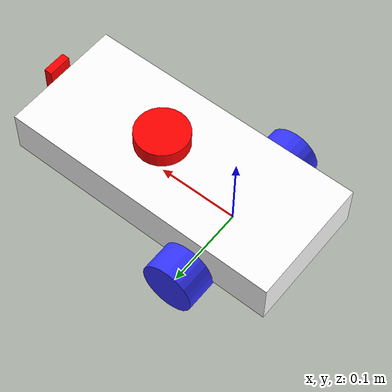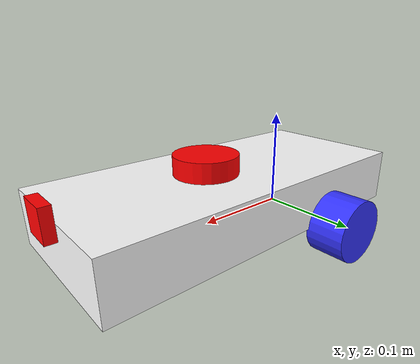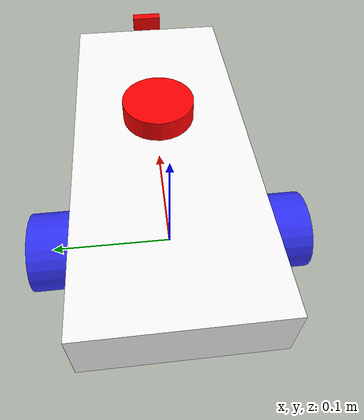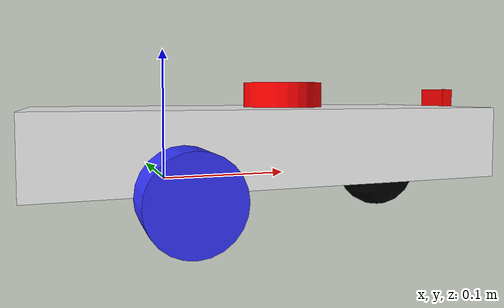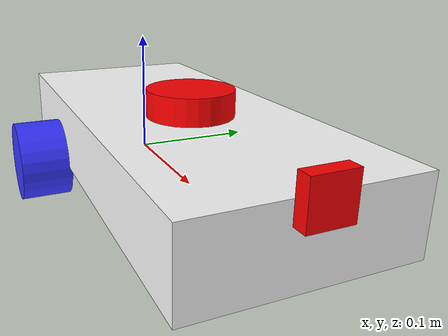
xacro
<?xml version="1.0"?>
<robot xmlns:xacro="http://www.ros.org/wiki/xacro"  name="robot">

    <xacro:arg name="use_ros2_control" default="true"/>

    <xacro:if value="$(arg use_ros2_control)">
    <xacro:include filename="ros2_control.xacro"/>
    </xacro:if>

    <xacro:unless value="$(arg use_ros2_control)">
    <xacro:include filename="gazebo_control.xacro"/>
   </xacro:unless>

    <xacro:include filename="robot_core.xacro"/>
    <xacro:include filename="lidar.xacro"/>
    <xacro:include filename="camera.xacro"/>

</robot>

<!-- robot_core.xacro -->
<robot xmlns:xacro="http://www.ros.org/wiki/xacro">
    <xacro:include filename="inertial_macros.xacro"/>
    <material name="white">
        <color rgba="1 1 1 1" />
    </material>

    <material name="orange">
        <color rgba="1 0.3 0.1 1" />
    </material>

    <material name="blue">
        <color rgba="0.2 0.2 1 1" />
    </material>

    <material name="black">
        <color rgba="0 0 0 1" />
    </material>

    <material name="red">
        <color rgba="1 0 0 1" />
    </material>

    <!-- BASE LINK -->
    <link name="base_link">

    </link>

    <!-- CHASSIS LINK  -->
    <joint name="chassis_joint" type="fixed">
        <parent link="base_link"/>
        <child link="chassis"/>
        <origin xyz="-0.1 0 0"/>
    </joint>

    <link name="chassis">
        <visual>
            <origin xyz="0.175 0 0.0275"/>
            <geometry>
                <box size ="0.35 0.155 0.055"/>
            </geometry>
            <material name="white"/>
        </visual>
        <collision>
            <origin xyz="0.175 0 0.0275"/>
            <geometry>
                <box size ="0.35 0.155 0.055"/>
            </geometry>
        </collision>
        <xacro:inertial_box mass="0.5" x="0.35" y="0.155" z="0.055">
            <origin xyz="0.175 0 0.0275" rpy="0 0 0"/>
        </xacro:inertial_box>
    </link>

    <gazebo reference="chassis">
        <material>Gazebo/White</material>
    </gazebo>

    <!-- LEFT WHEEL LINK -->
    <joint name="left_wheel_joint" type = "continuous">
        <parent link="base_link"/>
        <child link ="left_wheel"/>
        <origin xyz = "0 0.09525 0" rpy="-${pi/2} 0 0"/>
        <axis xyz ="0 0 1"/>
    </joint>

    <link name="left_wheel">
        <visual>
            <geometry>
                <cylinder radius="0.0325" length="0.04"/>
            </geometry>
            <material name="blue"/>
        </visual>
        <collision>
            <geometry>
                <sphere radius="0.0325"/>
            </geometry>
            <material name="blue"/>
        </collision>
        <xacro:inertial_cylinder mass ="0.1" length="0.04" radius="0.0325">
            <origin xyz ="0 0 0" rpy="0 0 0"/>
        </xacro:inertial_cylinder>
    </link>

    <gazebo reference="left_wheel">
        <material>Gazebo/Blue</material>
    </gazebo>

    <!-- RIGHT WHEEL LINK -->
    <joint name="right_wheel_joint" type = "continuous">
        <parent link="base_link"/>
        <child link ="right_wheel"/>
        <origin xyz = "0 -0.09525 0" rpy="${pi/2} 0 0"/>
        <axis xyz ="0 0 -1"/>
    </joint>

    <link name="right_wheel">
        <visual>
            <geometry>
                <cylinder radius="0.0325" length="0.04"/>
            </geometry>
            <material name="blue"/>
        </visual>
        <collision>
            <geometry>
                <sphere radius="0.0325"/>
            </geometry>
            <material name="blue"/>
        </collision>
        <xacro:inertial_cylinder mass ="0.1" length="0.04" radius="0.0325">
            <origin xyz ="0 0 0" rpy="0 0 0"/>
        </xacro:inertial_cylinder>
    </link>

    <gazebo reference="right_wheel">
        <material>Gazebo/Blue</material>
    </gazebo>

    <!-- CASTER WHEEL LINK -->
    <joint name="caster_wheel_joint" type="fixed">
        <parent link="chassis"/>
        <child link="caster_wheel"/>
        <origin xyz="0.29 0 0"/>
    </joint>

    <link name="caster_wheel">
        <visual>
            <geometry>
                <sphere radius="0.0325"/>
            </geometry>
            <material name="black"/>
        </visual>
        <collision>
            <geometry>
                <sphere radius="0.0325"/>
            </geometry>
            <material name="black"/>
        </collision>
        <xacro:inertial_sphere mass="0.1" radius="0.0325">
            <origin xyz ="0 0 0" rpy="0 0 0"/>
        </xacro:inertial_sphere>
    </link>

    <gazebo reference="caster_wheel">
        <material>Gazebo/Black</material>
        <mu1 value="0.001"/>
        <mu2 value="0.002"/>
    </gazebo>

</robot>

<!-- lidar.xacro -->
<robot xmlns:xacro="http://www.ros.org/wiki/xacro">

<joint name="laser_joint" type="fixed">
    <parent link="chassis"/>
    <child link="laser_frame"/>
    <!-- Fix this with actual dimensions -->
    <origin xyz = "0.2 0 0.055" rpy = "0 0 0"/>

</joint>

<link name="laser_frame">
    <visual>
        <geometry>
            <cylinder radius="0.0325" length="0.04"/>
        </geometry>
        <material name="red"/>
    </visual>
    <collision>
        <geometry>
            <cylinder radius="0.0325" length="0.04"/>
        </geometry>
    </collision>
    <xacro:inertial_cylinder mass ="0.1" length="0.04" radius="0.0325">
        <origin xyz ="0 0 0" rpy="0 0 0"/>
</xacro:inertial_cylinder>
</link>

<gazebo reference="laser_frame">
    <material>Gazebo/Red</material>
    <sensor name ="laser" type="ray">
        <pose>0 0 0 0 0 0</pose>
        <visualize>false</visualize>
        <update_rate>10</update_rate>
        <ray>
            <scan>
                <horizontal>
                    <samples>360</samples>
                    <resolution>1</resolution>
                    <min_angle>-3.14</min_angle>
                    <max_angle>3.14</max_angle>
                </horizontal>
            </scan>
            <range>
                <min>0.3</min>
                <max>12</max>
                <resolution>0.01</resolution>
            </range>
        </ray>
        <plugin name="laser_controller" filename="libgazebo_ros_ray_sensor.so">
            <ros>
                <argument>~/out:=scan</argument>
            </ros>
            <output_type>sensor_msgs/LaserScan</output_type>
            <frame_name>laser_frame</frame_name>
        </plugin>
    </sensor>
</gazebo>

</robot>

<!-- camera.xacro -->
<robot xmlns:xacro="http://www.ros.org/wiki/xacro">

<joint name="camera_joint" type="fixed">
    <parent link="chassis"/>
    <child link="camera_link"/>
    <!-- Fix this with actual dimensions -->
    <origin xyz = "0.355 0 0.055" rpy = "0 0 0"/>
</joint>

<link name="camera_link">
    <visual>
        <geometry>
            <box size="0.010 0.03 0.03"/>
        </geometry>
        <material name="red"/>
    </visual>
</link>

<joint name="camera_optical_joint" type="fixed">
    <parent link="camera_link"/>
    <child link="camera_link_optical"/>
    <!-- Fix this with actual dimensions -->
    <origin xyz = "0 0 0" rpy = "${-pi/2} 0 ${-pi/2}"/>
</joint>

<link name="camera_link_optical"/>

<gazebo reference="camera_link">
    <material>Gazebo/Red</material>
    <sensor name ="camera" type="camera">
        <pose>0 0 0 0 0 0</pose>
        <visualize>true</visualize>
        <update_rate>10</update_rate>
        <camera>
            <horizontal_fov>1.089</horizontal_fov>
            <image>
                <format>R8G8B8</format>
                <width>640</width>
                <height>480</height>
            </image>
            <clip>
                <near>0.05</near>
                <far>8.0</far>
            </clip>
        </camera>
        <plugin name="camera_controller" filename="libgazebo_ros_camera.so">
            <frame_name>camera_link_optical</frame_name>
        </plugin>
    </sensor>
</gazebo>

</robot>
